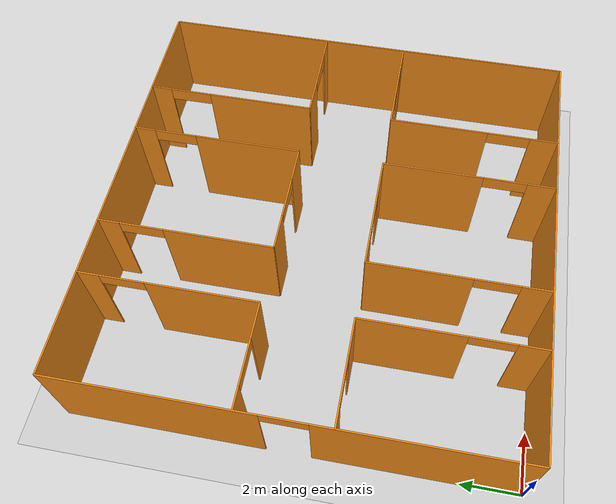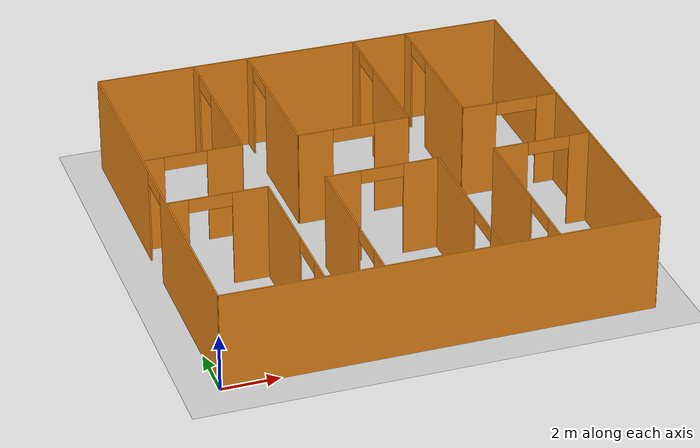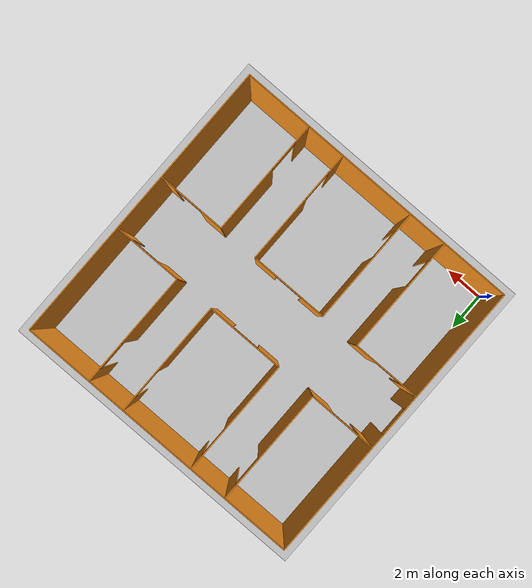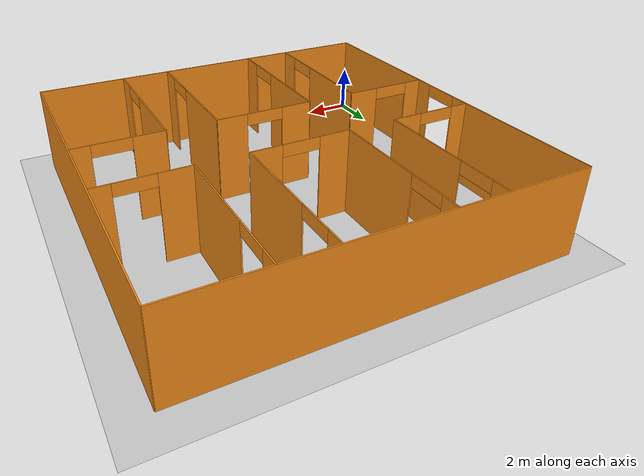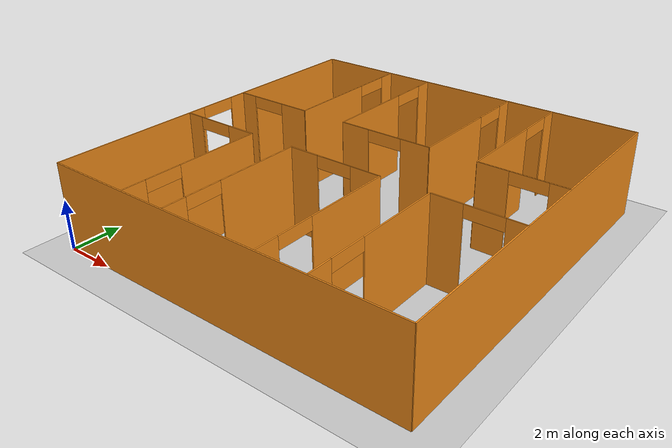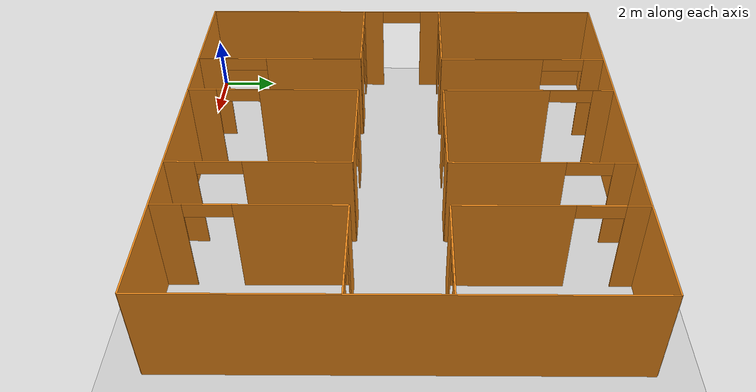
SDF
<sdf version="1.6">
  <world name="default">
    <model name="box_48">
  <pose frame="">7.5 9.0 3.25 0 0 -0.0</pose>
  <link name="link">
    <inertial>
      <mass>1</mass>
      <inertia>
        <ixx>0</ixx>
        <ixy>0</ixy>
        <ixz>0</ixz>
        <iyy>0</iyy>
        <iyz>0</iyz>
        <izz>0</izz>
      </inertia>
    </inertial>
    <collision name="collision">
      <geometry>
        <box>
          <size>1.5 0.05 0.5</size>
        </box>
      </geometry>
      <max_contacts>10</max_contacts>
      <surface>
        <contact>
          <ode/>
        </contact>
        <bounce/>
        <friction>
          <torsional>
            <ode/>
          </torsional>
          <ode/>
        </friction>
      </surface>
    </collision>
    <visual name="visual">
      <geometry>
        <box>
          <size>1.5 0.05 0.5</size>
        </box>
      </geometry>
      <material>
        <script>
          <name>Gazebo/Orange</name>
          <uri>file://media/materials/scripts/gazebo.material</uri>
        </script>
      </material>
    </visual>
    <self_collide>0</self_collide>
    <enable_wind>0</enable_wind>
    <kinematic>0</kinematic>
  </link>
	<static>1</static>
</model><model name="box_47">
  <pose frame="">1.5 9.0 3.25 0 0 -3.141592653589793</pose>
  <link name="link">
    <inertial>
      <mass>1</mass>
      <inertia>
        <ixx>0</ixx>
        <ixy>0</ixy>
        <ixz>0</ixz>
        <iyy>0</iyy>
        <iyz>0</iyz>
        <izz>0</izz>
      </inertia>
    </inertial>
    <collision name="collision">
      <geometry>
        <box>
          <size>1.5 0.05 0.5</size>
        </box>
      </geometry>
      <max_contacts>10</max_contacts>
      <surface>
        <contact>
          <ode/>
        </contact>
        <bounce/>
        <friction>
          <torsional>
            <ode/>
          </torsional>
          <ode/>
        </friction>
      </surface>
    </collision>
    <visual name="visual">
      <geometry>
        <box>
          <size>1.5 0.05 0.5</size>
        </box>
      </geometry>
      <material>
        <script>
          <name>Gazebo/Orange</name>
          <uri>file://media/materials/scripts/gazebo.material</uri>
        </script>
      </material>
    </visual>
    <self_collide>0</self_collide>
    <enable_wind>0</enable_wind>
    <kinematic>0</kinematic>
  </link>
	<static>1</static>
</model><model name="box_46">
  <pose frame="">1.5 6.0 3.25 0 0 -3.141592653589793</pose>
  <link name="link">
    <inertial>
      <mass>1</mass>
      <inertia>
        <ixx>0</ixx>
        <ixy>0</ixy>
        <ixz>0</ixz>
        <iyy>0</iyy>
        <iyz>0</iyz>
        <izz>0</izz>
      </inertia>
    </inertial>
    <collision name="collision">
      <geometry>
        <box>
          <size>1.5 0.05 0.5</size>
        </box>
      </geometry>
      <max_contacts>10</max_contacts>
      <surface>
        <contact>
          <ode/>
        </contact>
        <bounce/>
        <friction>
          <torsional>
            <ode/>
          </torsional>
          <ode/>
        </friction>
      </surface>
    </collision>
    <visual name="visual">
      <geometry>
        <box>
          <size>1.5 0.05 0.5</size>
        </box>
      </geometry>
      <material>
        <script>
          <name>Gazebo/Orange</name>
          <uri>file://media/materials/scripts/gazebo.material</uri>
        </script>
      </material>
    </visual>
    <self_collide>0</self_collide>
    <enable_wind>0</enable_wind>
    <kinematic>0</kinematic>
  </link>
	<static>1</static>
</model><model name="box_45">
  <pose frame="">7.5 6.0 3.25 0 0 -3.141592653589793</pose>
  <link name="link">
    <inertial>
      <mass>1</mass>
      <inertia>
        <ixx>0</ixx>
        <ixy>0</ixy>
        <ixz>0</ixz>
        <iyy>0</iyy>
        <iyz>0</iyz>
        <izz>0</izz>
      </inertia>
    </inertial>
    <collision name="collision">
      <geometry>
        <box>
          <size>1.5 0.05 0.5</size>
        </box>
      </geometry>
      <max_contacts>10</max_contacts>
      <surface>
        <contact>
          <ode/>
        </contact>
        <bounce/>
        <friction>
          <torsional>
            <ode/>
          </torsional>
          <ode/>
        </friction>
      </surface>
    </collision>
    <visual name="visual">
      <geometry>
        <box>
          <size>1.5 0.05 0.5</size>
        </box>
      </geometry>
      <material>
        <script>
          <name>Gazebo/Orange</name>
          <uri>file://media/materials/scripts/gazebo.material</uri>
        </script>
      </material>
    </visual>
    <self_collide>0</self_collide>
    <enable_wind>0</enable_wind>
    <kinematic>0</kinematic>
  </link>
	<static>1</static>
</model><model name="box_44">
  <pose frame="">13.5 6.0 3.25 0 0 -3.141592653589793</pose>
  <link name="link">
    <inertial>
      <mass>1</mass>
      <inertia>
        <ixx>0</ixx>
        <ixy>0</ixy>
        <ixz>0</ixz>
        <iyy>0</iyy>
        <iyz>0</iyz>
        <izz>0</izz>
      </inertia>
    </inertial>
    <collision name="collision">
      <geometry>
        <box>
          <size>1.5 0.05 0.5</size>
        </box>
      </geometry>
      <max_contacts>10</max_contacts>
      <surface>
        <contact>
          <ode/>
        </contact>
        <bounce/>
        <friction>
          <torsional>
            <ode/>
          </torsional>
          <ode/>
        </friction>
      </surface>
    </collision>
    <visual name="visual">
      <geometry>
        <box>
          <size>1.5 0.05 0.5</size>
        </box>
      </geometry>
      <material>
        <script>
          <name>Gazebo/Orange</name>
          <uri>file://media/materials/scripts/gazebo.material</uri>
        </script>
      </material>
    </visual>
    <self_collide>0</self_collide>
    <enable_wind>0</enable_wind>
    <kinematic>0</kinematic>
  </link>
	<static>1</static>
</model><model name="box_43">
  <pose frame="">13.5 9.0 3.25 0 0 -3.141592653589793</pose>
  <link name="link">
    <inertial>
      <mass>1</mass>
      <inertia>
        <ixx>0</ixx>
        <ixy>0</ixy>
        <ixz>0</ixz>
        <iyy>0</iyy>
        <iyz>0</iyz>
        <izz>0</izz>
      </inertia>
    </inertial>
    <collision name="collision">
      <geometry>
        <box>
          <size>1.5 0.05 0.5</size>
        </box>
      </geometry>
      <max_contacts>10</max_contacts>
      <surface>
        <contact>
          <ode/>
        </contact>
        <bounce/>
        <friction>
          <torsional>
            <ode/>
          </torsional>
          <ode/>
        </friction>
      </surface>
    </collision>
    <visual name="visual">
      <geometry>
        <box>
          <size>1.5 0.05 0.5</size>
        </box>
      </geometry>
      <material>
        <script>
          <name>Gazebo/Orange</name>
          <uri>file://media/materials/scripts/gazebo.material</uri>
        </script>
      </material>
    </visual>
    <self_collide>0</self_collide>
    <enable_wind>0</enable_wind>
    <kinematic>0</kinematic>
  </link>
	<static>1</static>
</model><model name="box_42">
  <pose frame="">0.0 7.5 3.25 0 0 1.5707963267948966</pose>
  <link name="link">
    <inertial>
      <mass>1</mass>
      <inertia>
        <ixx>0</ixx>
        <ixy>0</ixy>
        <ixz>0</ixz>
        <iyy>0</iyy>
        <iyz>0</iyz>
        <izz>0</izz>
      </inertia>
    </inertial>
    <collision name="collision">
      <geometry>
        <box>
          <size>1.5 0.05 0.5</size>
        </box>
      </geometry>
      <max_contacts>10</max_contacts>
      <surface>
        <contact>
          <ode/>
        </contact>
        <bounce/>
        <friction>
          <torsional>
            <ode/>
          </torsional>
          <ode/>
        </friction>
      </surface>
    </collision>
    <visual name="visual">
      <geometry>
        <box>
          <size>1.5 0.05 0.5</size>
        </box>
      </geometry>
      <material>
        <script>
          <name>Gazebo/Orange</name>
          <uri>file://media/materials/scripts/gazebo.material</uri>
        </script>
      </material>
    </visual>
    <self_collide>0</self_collide>
    <enable_wind>0</enable_wind>
    <kinematic>0</kinematic>
  </link>
	<static>1</static>
</model><model name="box_41">
  <pose frame="">5.5 13.5 3.25 0 0 1.5707963267948966</pose>
  <link name="link">
    <inertial>
      <mass>1</mass>
      <inertia>
        <ixx>0</ixx>
        <ixy>0</ixy>
        <ixz>0</ixz>
        <iyy>0</iyy>
        <iyz>0</iyz>
        <izz>0</izz>
      </inertia>
    </inertial>
    <collision name="collision">
      <geometry>
        <box>
          <size>1.5 0.05 0.5</size>
        </box>
      </geometry>
      <max_contacts>10</max_contacts>
      <surface>
        <contact>
          <ode/>
        </contact>
        <bounce/>
        <friction>
          <torsional>
            <ode/>
          </torsional>
          <ode/>
        </friction>
      </surface>
    </collision>
    <visual name="visual">
      <geometry>
        <box>
          <size>1.5 0.05 0.5</size>
        </box>
      </geometry>
      <material>
        <script>
          <name>Gazebo/Orange</name>
          <uri>file://media/materials/scripts/gazebo.material</uri>
        </script>
      </material>
    </visual>
    <self_collide>0</self_collide>
    <enable_wind>0</enable_wind>
    <kinematic>0</kinematic>
  </link>
	<static>1</static>
</model><model name="box_40">
  <pose frame="">3.5 13.5 3.25 0 0 1.5707963267948966</pose>
  <link name="link">
    <inertial>
      <mass>1</mass>
      <inertia>
        <ixx>0</ixx>
        <ixy>0</ixy>
        <ixz>0</ixz>
        <iyy>0</iyy>
        <iyz>0</iyz>
        <izz>0</izz>
      </inertia>
    </inertial>
    <collision name="collision">
      <geometry>
        <box>
          <size>1.5 0.05 0.5</size>
        </box>
      </geometry>
      <max_contacts>10</max_contacts>
      <surface>
        <contact>
          <ode/>
        </contact>
        <bounce/>
        <friction>
          <torsional>
            <ode/>
          </torsional>
          <ode/>
        </friction>
      </surface>
    </collision>
    <visual name="visual">
      <geometry>
        <box>
          <size>1.5 0.05 0.5</size>
        </box>
      </geometry>
      <material>
        <script>
          <name>Gazebo/Orange</name>
          <uri>file://media/materials/scripts/gazebo.material</uri>
        </script>
      </material>
    </visual>
    <self_collide>0</self_collide>
    <enable_wind>0</enable_wind>
    <kinematic>0</kinematic>
  </link>
	<static>1</static>
</model><model name="box_39">
  <pose frame="">9.5 13.5 3.25 0 0 1.5707963267948966</pose>
  <link name="link">
    <inertial>
      <mass>1</mass>
      <inertia>
        <ixx>0</ixx>
        <ixy>0</ixy>
        <ixz>0</ixz>
        <iyy>0</iyy>
        <iyz>0</iyz>
        <izz>0</izz>
      </inertia>
    </inertial>
    <collision name="collision">
      <geometry>
        <box>
          <size>1.5 0.05 0.5</size>
        </box>
      </geometry>
      <max_contacts>10</max_contacts>
      <surface>
        <contact>
          <ode/>
        </contact>
        <bounce/>
        <friction>
          <torsional>
            <ode/>
          </torsional>
          <ode/>
        </friction>
      </surface>
    </collision>
    <visual name="visual">
      <geometry>
        <box>
          <size>1.5 0.05 0.5</size>
        </box>
      </geometry>
      <material>
        <script>
          <name>Gazebo/Orange</name>
          <uri>file://media/materials/scripts/gazebo.material</uri>
        </script>
      </material>
    </visual>
    <self_collide>0</self_collide>
    <enable_wind>0</enable_wind>
    <kinematic>0</kinematic>
  </link>
	<static>1</static>
</model><model name="box_38">
  <pose frame="">11.5 13.5 3.25 0 0 1.5707963267948966</pose>
  <link name="link">
    <inertial>
      <mass>1</mass>
      <inertia>
        <ixx>0</ixx>
        <ixy>0</ixy>
        <ixz>0</ixz>
        <iyy>0</iyy>
        <iyz>0</iyz>
        <izz>0</izz>
      </inertia>
    </inertial>
    <collision name="collision">
      <geometry>
        <box>
          <size>1.5 0.05 0.5</size>
        </box>
      </geometry>
      <max_contacts>10</max_contacts>
      <surface>
        <contact>
          <ode/>
        </contact>
        <bounce/>
        <friction>
          <torsional>
            <ode/>
          </torsional>
          <ode/>
        </friction>
      </surface>
    </collision>
    <visual name="visual">
      <geometry>
        <box>
          <size>1.5 0.05 0.5</size>
        </box>
      </geometry>
      <material>
        <script>
          <name>Gazebo/Orange</name>
          <uri>file://media/materials/scripts/gazebo.material</uri>
        </script>
      </material>
    </visual>
    <self_collide>0</self_collide>
    <enable_wind>0</enable_wind>
    <kinematic>0</kinematic>
  </link>
	<static>1</static>
</model><model name="box_37">
  <pose frame="">11.5 1.75 3.25 0 0 -1.5707963267948966</pose>
  <link name="link">
    <inertial>
      <mass>1</mass>
      <inertia>
        <ixx>0</ixx>
        <ixy>0</ixy>
        <ixz>0</ixz>
        <iyy>0</iyy>
        <iyz>0</iyz>
        <izz>0</izz>
      </inertia>
    </inertial>
    <collision name="collision">
      <geometry>
        <box>
          <size>1.5 0.05 0.5</size>
        </box>
      </geometry>
      <max_contacts>10</max_contacts>
      <surface>
        <contact>
          <ode/>
        </contact>
        <bounce/>
        <friction>
          <torsional>
            <ode/>
          </torsional>
          <ode/>
        </friction>
      </surface>
    </collision>
    <visual name="visual">
      <geometry>
        <box>
          <size>1.5 0.05 0.5</size>
        </box>
      </geometry>
      <material>
        <script>
          <name>Gazebo/Orange</name>
          <uri>file://media/materials/scripts/gazebo.material</uri>
        </script>
      </material>
    </visual>
    <self_collide>0</self_collide>
    <enable_wind>0</enable_wind>
    <kinematic>0</kinematic>
  </link>
	<static>1</static>
</model><model name="box_36">
  <pose frame="">9.5 1.75 3.25 0 0 -1.5707963267948966</pose>
  <link name="link">
    <inertial>
      <mass>1</mass>
      <inertia>
        <ixx>0</ixx>
        <ixy>0</ixy>
        <ixz>0</ixz>
        <iyy>0</iyy>
        <iyz>0</iyz>
        <izz>0</izz>
      </inertia>
    </inertial>
    <collision name="collision">
      <geometry>
        <box>
          <size>1.5 0.05 0.5</size>
        </box>
      </geometry>
      <max_contacts>10</max_contacts>
      <surface>
        <contact>
          <ode/>
        </contact>
        <bounce/>
        <friction>
          <torsional>
            <ode/>
          </torsional>
          <ode/>
        </friction>
      </surface>
    </collision>
    <visual name="visual">
      <geometry>
        <box>
          <size>1.5 0.05 0.5</size>
        </box>
      </geometry>
      <material>
        <script>
          <name>Gazebo/Orange</name>
          <uri>file://media/materials/scripts/gazebo.material</uri>
        </script>
      </material>
    </visual>
    <self_collide>0</self_collide>
    <enable_wind>0</enable_wind>
    <kinematic>0</kinematic>
  </link>
	<static>1</static>
</model><model name="box_35">
  <pose frame="">5.5 1.75 3.25 0 0 -1.5707963267948966</pose>
  <link name="link">
    <inertial>
      <mass>1</mass>
      <inertia>
        <ixx>0</ixx>
        <ixy>0</ixy>
        <ixz>0</ixz>
        <iyy>0</iyy>
        <iyz>0</iyz>
        <izz>0</izz>
      </inertia>
    </inertial>
    <collision name="collision">
      <geometry>
        <box>
          <size>1.5 0.05 0.5</size>
        </box>
      </geometry>
      <max_contacts>10</max_contacts>
      <surface>
        <contact>
          <ode/>
        </contact>
        <bounce/>
        <friction>
          <torsional>
            <ode/>
          </torsional>
          <ode/>
        </friction>
      </surface>
    </collision>
    <visual name="visual">
      <geometry>
        <box>
          <size>1.5 0.05 0.5</size>
        </box>
      </geometry>
      <material>
        <script>
          <name>Gazebo/Orange</name>
          <uri>file://media/materials/scripts/gazebo.material</uri>
        </script>
      </material>
    </visual>
    <self_collide>0</self_collide>
    <enable_wind>0</enable_wind>
    <kinematic>0</kinematic>
  </link>
	<static>1</static>
</model><model name="box_34">
  <pose frame="">3.5 1.75 3.25 0 0 -1.5707963267948966</pose>
  <link name="link">
    <inertial>
      <mass>1</mass>
      <inertia>
        <ixx>0</ixx>
        <ixy>0</ixy>
        <ixz>0</ixz>
        <iyy>0</iyy>
        <iyz>0</iyz>
        <izz>0</izz>
      </inertia>
    </inertial>
    <collision name="collision">
      <geometry>
        <box>
          <size>1.5 0.05 0.5</size>
        </box>
      </geometry>
      <max_contacts>10</max_contacts>
      <surface>
        <contact>
          <ode/>
        </contact>
        <bounce/>
        <friction>
          <torsional>
            <ode/>
          </torsional>
          <ode/>
        </friction>
      </surface>
    </collision>
    <visual name="visual">
      <geometry>
        <box>
          <size>1.5 0.05 0.5</size>
        </box>
      </geometry>
      <material>
        <script>
          <name>Gazebo/Orange</name>
          <uri>file://media/materials/scripts/gazebo.material</uri>
        </script>
      </material>
    </visual>
    <self_collide>0</self_collide>
    <enable_wind>0</enable_wind>
    <kinematic>0</kinematic>
  </link>
	<static>1</static>
</model><model name="box_33">
  <pose frame="">9.5 10.875 1.75 0 0 -1.5707963267948966</pose>
  <link name="link">
    <inertial>
      <mass>1</mass>
      <inertia>
        <ixx>0</ixx>
        <ixy>0</ixy>
        <ixz>0</ixz>
        <iyy>0</iyy>
        <iyz>0</iyz>
        <izz>0</izz>
      </inertia>
    </inertial>
    <collision name="collision">
      <geometry>
        <box>
          <size>3.75 0.05 3.5</size>
        </box>
      </geometry>
      <max_contacts>10</max_contacts>
      <surface>
        <contact>
          <ode/>
        </contact>
        <bounce/>
        <friction>
          <torsional>
            <ode/>
          </torsional>
          <ode/>
        </friction>
      </surface>
    </collision>
    <visual name="visual">
      <geometry>
        <box>
          <size>3.75 0.05 3.5</size>
        </box>
      </geometry>
      <material>
        <script>
          <name>Gazebo/Orange</name>
          <uri>file://media/materials/scripts/gazebo.material</uri>
        </script>
      </material>
    </visual>
    <self_collide>0</self_collide>
    <enable_wind>0</enable_wind>
    <kinematic>0</kinematic>
  </link>
	<static>1</static>
</model><model name="box_32">
  <pose frame="">8.875 9.0 1.75 0 0 -3.141592653589793</pose>
  <link name="link">
    <inertial>
      <mass>1</mass>
      <inertia>
        <ixx>0</ixx>
        <ixy>0</ixy>
        <ixz>0</ixz>
        <iyy>0</iyy>
        <iyz>0</iyz>
        <izz>0</izz>
      </inertia>
    </inertial>
    <collision name="collision">
      <geometry>
        <box>
          <size>1.25 0.05 3.5</size>
        </box>
      </geometry>
      <max_contacts>10</max_contacts>
      <surface>
        <contact>
          <ode/>
        </contact>
        <bounce/>
        <friction>
          <torsional>
            <ode/>
          </torsional>
          <ode/>
        </friction>
      </surface>
    </collision>
    <visual name="visual">
      <geometry>
        <box>
          <size>1.25 0.05 3.5</size>
        </box>
      </geometry>
      <material>
        <script>
          <name>Gazebo/Orange</name>
          <uri>file://media/materials/scripts/gazebo.material</uri>
        </script>
      </material>
    </visual>
    <self_collide>0</self_collide>
    <enable_wind>0</enable_wind>
    <kinematic>0</kinematic>
  </link>
	<static>1</static>
</model><model name="box_31">
  <pose frame="">14.625 6.0 1.75 0 0 -3.141592653589793</pose>
  <link name="link">
    <inertial>
      <mass>1</mass>
      <inertia>
        <ixx>0</ixx>
        <ixy>0</ixy>
        <ixz>0</ixz>
        <iyy>0</iyy>
        <iyz>0</iyz>
        <izz>0</izz>
      </inertia>
    </inertial>
    <collision name="collision">
      <geometry>
        <box>
          <size>0.75 0.05 3.5</size>
        </box>
      </geometry>
      <max_contacts>10</max_contacts>
      <surface>
        <contact>
          <ode/>
        </contact>
        <bounce/>
        <friction>
          <torsional>
            <ode/>
          </torsional>
          <ode/>
        </friction>
      </surface>
    </collision>
    <visual name="visual">
      <geometry>
        <box>
          <size>0.75 0.05 3.5</size>
        </box>
      </geometry>
      <material>
        <script>
          <name>Gazebo/Orange</name>
          <uri>file://media/materials/scripts/gazebo.material</uri>
        </script>
      </material>
    </visual>
    <self_collide>0</self_collide>
    <enable_wind>0</enable_wind>
    <kinematic>0</kinematic>
  </link>
	<static>1</static>
</model><model name="box_30">
  <pose frame="">12.125 6.0 1.75 0 0 -3.141592653589793</pose>
  <link name="link">
    <inertial>
      <mass>1</mass>
      <inertia>
        <ixx>0</ixx>
        <ixy>0</ixy>
        <ixz>0</ixz>
        <iyy>0</iyy>
        <iyz>0</iyz>
        <izz>0</izz>
      </inertia>
    </inertial>
    <collision name="collision">
      <geometry>
        <box>
          <size>1.25 0.05 3.5</size>
        </box>
      </geometry>
      <max_contacts>10</max_contacts>
      <surface>
        <contact>
          <ode/>
        </contact>
        <bounce/>
        <friction>
          <torsional>
            <ode/>
          </torsional>
          <ode/>
        </friction>
      </surface>
    </collision>
    <visual name="visual">
      <geometry>
        <box>
          <size>1.25 0.05 3.5</size>
        </box>
      </geometry>
      <material>
        <script>
          <name>Gazebo/Orange</name>
          <uri>file://media/materials/scripts/gazebo.material</uri>
        </script>
      </material>
    </visual>
    <self_collide>0</self_collide>
    <enable_wind>0</enable_wind>
    <kinematic>0</kinematic>
  </link>
	<static>1</static>
</model><model name="box_29">
  <pose frame="">11.5 4.25 1.75 0 0 -1.5707963267948966</pose>
  <link name="link">
    <inertial>
      <mass>1</mass>
      <inertia>
        <ixx>0</ixx>
        <ixy>0</ixy>
        <ixz>0</ixz>
        <iyy>0</iyy>
        <iyz>0</iyz>
        <izz>0</izz>
      </inertia>
    </inertial>
    <collision name="collision">
      <geometry>
        <box>
          <size>3.5 0.05 3.5</size>
        </box>
      </geometry>
      <max_contacts>10</max_contacts>
      <surface>
        <contact>
          <ode/>
        </contact>
        <bounce/>
        <friction>
          <torsional>
            <ode/>
          </torsional>
          <ode/>
        </friction>
      </surface>
    </collision>
    <visual name="visual">
      <geometry>
        <box>
          <size>3.5 0.05 3.5</size>
        </box>
      </geometry>
      <material>
        <script>
          <name>Gazebo/Orange</name>
          <uri>file://media/materials/scripts/gazebo.material</uri>
        </script>
      </material>
    </visual>
    <self_collide>0</self_collide>
    <enable_wind>0</enable_wind>
    <kinematic>0</kinematic>
  </link>
	<static>1</static>
</model><model name="box_28">
  <pose frame="">9.5 4.25 1.75 0 0 1.5707963267948966</pose>
  <link name="link">
    <inertial>
      <mass>1</mass>
      <inertia>
        <ixx>0</ixx>
        <ixy>0</ixy>
        <ixz>0</ixz>
        <iyy>0</iyy>
        <iyz>0</iyz>
        <izz>0</izz>
      </inertia>
    </inertial>
    <collision name="collision">
      <geometry>
        <box>
          <size>3.5 0.05 3.5</size>
        </box>
      </geometry>
      <max_contacts>10</max_contacts>
      <surface>
        <contact>
          <ode/>
        </contact>
        <bounce/>
        <friction>
          <torsional>
            <ode/>
          </torsional>
          <ode/>
        </friction>
      </surface>
    </collision>
    <visual name="visual">
      <geometry>
        <box>
          <size>3.5 0.05 3.5</size>
        </box>
      </geometry>
      <material>
        <script>
          <name>Gazebo/Orange</name>
          <uri>file://media/materials/scripts/gazebo.material</uri>
        </script>
      </material>
    </visual>
    <self_collide>0</self_collide>
    <enable_wind>0</enable_wind>
    <kinematic>0</kinematic>
  </link>
	<static>1</static>
</model><model name="box_27">
  <pose frame="">8.875 6.0 1.75 0 0 -3.141592653589793</pose>
  <link name="link">
    <inertial>
      <mass>1</mass>
      <inertia>
        <ixx>0</ixx>
        <ixy>0</ixy>
        <ixz>0</ixz>
        <iyy>0</iyy>
        <iyz>0</iyz>
        <izz>0</izz>
      </inertia>
    </inertial>
    <collision name="collision">
      <geometry>
        <box>
          <size>1.25 0.05 3.5</size>
        </box>
      </geometry>
      <max_contacts>10</max_contacts>
      <surface>
        <contact>
          <ode/>
        </contact>
        <bounce/>
        <friction>
          <torsional>
            <ode/>
          </torsional>
          <ode/>
        </friction>
      </surface>
    </collision>
    <visual name="visual">
      <geometry>
        <box>
          <size>1.25 0.05 3.5</size>
        </box>
      </geometry>
      <material>
        <script>
          <name>Gazebo/Orange</name>
          <uri>file://media/materials/scripts/gazebo.material</uri>
        </script>
      </material>
    </visual>
    <self_collide>0</self_collide>
    <enable_wind>0</enable_wind>
    <kinematic>0</kinematic>
  </link>
	<static>1</static>
</model><model name="box_26">
  <pose frame="">6.125 6.0 1.75 0 0 -3.141592653589793</pose>
  <link name="link">
    <inertial>
      <mass>1</mass>
      <inertia>
        <ixx>0</ixx>
        <ixy>0</ixy>
        <ixz>0</ixz>
        <iyy>0</iyy>
        <iyz>0</iyz>
        <izz>0</izz>
      </inertia>
    </inertial>
    <collision name="collision">
      <geometry>
        <box>
          <size>1.25 0.05 3.5</size>
        </box>
      </geometry>
      <max_contacts>10</max_contacts>
      <surface>
        <contact>
          <ode/>
        </contact>
        <bounce/>
        <friction>
          <torsional>
            <ode/>
          </torsional>
          <ode/>
        </friction>
      </surface>
    </collision>
    <visual name="visual">
      <geometry>
        <box>
          <size>1.25 0.05 3.5</size>
        </box>
      </geometry>
      <material>
        <script>
          <name>Gazebo/Orange</name>
          <uri>file://media/materials/scripts/gazebo.material</uri>
        </script>
      </material>
    </visual>
    <self_collide>0</self_collide>
    <enable_wind>0</enable_wind>
    <kinematic>0</kinematic>
  </link>
	<static>1</static>
</model><model name="box_25">
  <pose frame="">5.5 4.25 1.75 0 0 -1.5707963267948966</pose>
  <link name="link">
    <inertial>
      <mass>1</mass>
      <inertia>
        <ixx>0</ixx>
        <ixy>0</ixy>
        <ixz>0</ixz>
        <iyy>0</iyy>
        <iyz>0</iyz>
        <izz>0</izz>
      </inertia>
    </inertial>
    <collision name="collision">
      <geometry>
        <box>
          <size>3.5 0.05 3.5</size>
        </box>
      </geometry>
      <max_contacts>10</max_contacts>
      <surface>
        <contact>
          <ode/>
        </contact>
        <bounce/>
        <friction>
          <torsional>
            <ode/>
          </torsional>
          <ode/>
        </friction>
      </surface>
    </collision>
    <visual name="visual">
      <geometry>
        <box>
          <size>3.5 0.05 3.5</size>
        </box>
      </geometry>
      <material>
        <script>
          <name>Gazebo/Orange</name>
          <uri>file://media/materials/scripts/gazebo.material</uri>
        </script>
      </material>
    </visual>
    <self_collide>0</self_collide>
    <enable_wind>0</enable_wind>
    <kinematic>0</kinematic>
  </link>
	<static>1</static>
</model><model name="box_24">
  <pose frame="">3.5 4.25 1.75 0 0 1.5707963267948966</pose>
  <link name="link">
    <inertial>
      <mass>1</mass>
      <inertia>
        <ixx>0</ixx>
        <ixy>0</ixy>
        <ixz>0</ixz>
        <iyy>0</iyy>
        <iyz>0</iyz>
        <izz>0</izz>
      </inertia>
    </inertial>
    <collision name="collision">
      <geometry>
        <box>
          <size>3.5 0.05 3.5</size>
        </box>
      </geometry>
      <max_contacts>10</max_contacts>
      <surface>
        <contact>
          <ode/>
        </contact>
        <bounce/>
        <friction>
          <torsional>
            <ode/>
          </torsional>
          <ode/>
        </friction>
      </surface>
    </collision>
    <visual name="visual">
      <geometry>
        <box>
          <size>3.5 0.05 3.5</size>
        </box>
      </geometry>
      <material>
        <script>
          <name>Gazebo/Orange</name>
          <uri>file://media/materials/scripts/gazebo.material</uri>
        </script>
      </material>
    </visual>
    <self_collide>0</self_collide>
    <enable_wind>0</enable_wind>
    <kinematic>0</kinematic>
  </link>
	<static>1</static>
</model><model name="box_23">
  <pose frame="">2.875 6.0 1.75 0 0 -3.141592653589793</pose>
  <link name="link">
    <inertial>
      <mass>1</mass>
      <inertia>
        <ixx>0</ixx>
        <ixy>0</ixy>
        <ixz>0</ixz>
        <iyy>0</iyy>
        <iyz>0</iyz>
        <izz>0</izz>
      </inertia>
    </inertial>
    <collision name="collision">
      <geometry>
        <box>
          <size>1.25 0.05 3.5</size>
        </box>
      </geometry>
      <max_contacts>10</max_contacts>
      <surface>
        <contact>
          <ode/>
        </contact>
        <bounce/>
        <friction>
          <torsional>
            <ode/>
          </torsional>
          <ode/>
        </friction>
      </surface>
    </collision>
    <visual name="visual">
      <geometry>
        <box>
          <size>1.25 0.05 3.5</size>
        </box>
      </geometry>
      <material>
        <script>
          <name>Gazebo/Orange</name>
          <uri>file://media/materials/scripts/gazebo.material</uri>
        </script>
      </material>
    </visual>
    <self_collide>0</self_collide>
    <enable_wind>0</enable_wind>
    <kinematic>0</kinematic>
  </link>
	<static>1</static>
</model><model name="box_22">
  <pose frame="">0.375 6.0 1.75 0 0 -3.141592653589793</pose>
  <link name="link">
    <inertial>
      <mass>1</mass>
      <inertia>
        <ixx>0</ixx>
        <ixy>0</ixy>
        <ixz>0</ixz>
        <iyy>0</iyy>
        <iyz>0</iyz>
        <izz>0</izz>
      </inertia>
    </inertial>
    <collision name="collision">
      <geometry>
        <box>
          <size>0.75 0.05 3.5</size>
        </box>
      </geometry>
      <max_contacts>10</max_contacts>
      <surface>
        <contact>
          <ode/>
        </contact>
        <bounce/>
        <friction>
          <torsional>
            <ode/>
          </torsional>
          <ode/>
        </friction>
      </surface>
    </collision>
    <visual name="visual">
      <geometry>
        <box>
          <size>0.75 0.05 3.5</size>
        </box>
      </geometry>
      <material>
        <script>
          <name>Gazebo/Orange</name>
          <uri>file://media/materials/scripts/gazebo.material</uri>
        </script>
      </material>
    </visual>
    <self_collide>0</self_collide>
    <enable_wind>0</enable_wind>
    <kinematic>0</kinematic>
  </link>
	<static>1</static>
</model><model name="box_21">
  <pose frame="">14.625 9.0 1.75 0 0 -3.141592653589793</pose>
  <link name="link">
    <inertial>
      <mass>1</mass>
      <inertia>
        <ixx>0</ixx>
        <ixy>0</ixy>
        <ixz>0</ixz>
        <iyy>0</iyy>
        <iyz>0</iyz>
        <izz>0</izz>
      </inertia>
    </inertial>
    <collision name="collision">
      <geometry>
        <box>
          <size>0.75 0.05 3.5</size>
        </box>
      </geometry>
      <max_contacts>10</max_contacts>
      <surface>
        <contact>
          <ode/>
        </contact>
        <bounce/>
        <friction>
          <torsional>
            <ode/>
          </torsional>
          <ode/>
        </friction>
      </surface>
    </collision>
    <visual name="visual">
      <geometry>
        <box>
          <size>0.75 0.05 3.5</size>
        </box>
      </geometry>
      <material>
        <script>
          <name>Gazebo/Orange</name>
          <uri>file://media/materials/scripts/gazebo.material</uri>
        </script>
      </material>
    </visual>
    <self_collide>0</self_collide>
    <enable_wind>0</enable_wind>
    <kinematic>0</kinematic>
  </link>
	<static>1</static>
</model><model name="box_20">
  <pose frame="">12.125 9.0 1.75 0 0 -3.141592653589793</pose>
  <link name="link">
    <inertial>
      <mass>1</mass>
      <inertia>
        <ixx>0</ixx>
        <ixy>0</ixy>
        <ixz>0</ixz>
        <iyy>0</iyy>
        <iyz>0</iyz>
        <izz>0</izz>
      </inertia>
    </inertial>
    <collision name="collision">
      <geometry>
        <box>
          <size>1.25 0.05 3.5</size>
        </box>
      </geometry>
      <max_contacts>10</max_contacts>
      <surface>
        <contact>
          <ode/>
        </contact>
        <bounce/>
        <friction>
          <torsional>
            <ode/>
          </torsional>
          <ode/>
        </friction>
      </surface>
    </collision>
    <visual name="visual">
      <geometry>
        <box>
          <size>1.25 0.05 3.5</size>
        </box>
      </geometry>
      <material>
        <script>
          <name>Gazebo/Orange</name>
          <uri>file://media/materials/scripts/gazebo.material</uri>
        </script>
      </material>
    </visual>
    <self_collide>0</self_collide>
    <enable_wind>0</enable_wind>
    <kinematic>0</kinematic>
  </link>
	<static>1</static>
</model><model name="box_19">
  <pose frame="">11.5 10.875 1.75 0 0 1.5707963267948966</pose>
  <link name="link">
    <inertial>
      <mass>1</mass>
      <inertia>
        <ixx>0</ixx>
        <ixy>0</ixy>
        <ixz>0</ixz>
        <iyy>0</iyy>
        <iyz>0</iyz>
        <izz>0</izz>
      </inertia>
    </inertial>
    <collision name="collision">
      <geometry>
        <box>
          <size>3.75 0.05 3.5</size>
        </box>
      </geometry>
      <max_contacts>10</max_contacts>
      <surface>
        <contact>
          <ode/>
        </contact>
        <bounce/>
        <friction>
          <torsional>
            <ode/>
          </torsional>
          <ode/>
        </friction>
      </surface>
    </collision>
    <visual name="visual">
      <geometry>
        <box>
          <size>3.75 0.05 3.5</size>
        </box>
      </geometry>
      <material>
        <script>
          <name>Gazebo/Orange</name>
          <uri>file://media/materials/scripts/gazebo.material</uri>
        </script>
      </material>
    </visual>
    <self_collide>0</self_collide>
    <enable_wind>0</enable_wind>
    <kinematic>0</kinematic>
  </link>
	<static>1</static>
</model><model name="box_18">
  <pose frame="">6.125 9.0 1.75 0 0 -3.141592653589793</pose>
  <link name="link">
    <inertial>
      <mass>1</mass>
      <inertia>
        <ixx>0</ixx>
        <ixy>0</ixy>
        <ixz>0</ixz>
        <iyy>0</iyy>
        <iyz>0</iyz>
        <izz>0</izz>
      </inertia>
    </inertial>
    <collision name="collision">
      <geometry>
        <box>
          <size>1.25 0.05 3.5</size>
        </box>
      </geometry>
      <max_contacts>10</max_contacts>
      <surface>
        <contact>
          <ode/>
        </contact>
        <bounce/>
        <friction>
          <torsional>
            <ode/>
          </torsional>
          <ode/>
        </friction>
      </surface>
    </collision>
    <visual name="visual">
      <geometry>
        <box>
          <size>1.25 0.05 3.5</size>
        </box>
      </geometry>
      <material>
        <script>
          <name>Gazebo/Orange</name>
          <uri>file://media/materials/scripts/gazebo.material</uri>
        </script>
      </material>
    </visual>
    <self_collide>0</self_collide>
    <enable_wind>0</enable_wind>
    <kinematic>0</kinematic>
  </link>
	<static>1</static>
</model><model name="box_17">
  <pose frame="">5.5 10.875 1.75 0 0 1.5707963267948966</pose>
  <link name="link">
    <inertial>
      <mass>1</mass>
      <inertia>
        <ixx>0</ixx>
        <ixy>0</ixy>
        <ixz>0</ixz>
        <iyy>0</iyy>
        <iyz>0</iyz>
        <izz>0</izz>
      </inertia>
    </inertial>
    <collision name="collision">
      <geometry>
        <box>
          <size>3.75 0.05 3.5</size>
        </box>
      </geometry>
      <max_contacts>10</max_contacts>
      <surface>
        <contact>
          <ode/>
        </contact>
        <bounce/>
        <friction>
          <torsional>
            <ode/>
          </torsional>
          <ode/>
        </friction>
      </surface>
    </collision>
    <visual name="visual">
      <geometry>
        <box>
          <size>3.75 0.05 3.5</size>
        </box>
      </geometry>
      <material>
        <script>
          <name>Gazebo/Orange</name>
          <uri>file://media/materials/scripts/gazebo.material</uri>
        </script>
      </material>
    </visual>
    <self_collide>0</self_collide>
    <enable_wind>0</enable_wind>
    <kinematic>0</kinematic>
  </link>
	<static>1</static>
</model><model name="box_16">
  <pose frame="">3.5 10.875 1.75 0 0 -1.5707963267948966</pose>
  <link name="link">
    <inertial>
      <mass>1</mass>
      <inertia>
        <ixx>0</ixx>
        <ixy>0</ixy>
        <ixz>0</ixz>
        <iyy>0</iyy>
        <iyz>0</iyz>
        <izz>0</izz>
      </inertia>
    </inertial>
    <collision name="collision">
      <geometry>
        <box>
          <size>3.75 0.05 3.5</size>
        </box>
      </geometry>
      <max_contacts>10</max_contacts>
      <surface>
        <contact>
          <ode/>
        </contact>
        <bounce/>
        <friction>
          <torsional>
            <ode/>
          </torsional>
          <ode/>
        </friction>
      </surface>
    </collision>
    <visual name="visual">
      <geometry>
        <box>
          <size>3.75 0.05 3.5</size>
        </box>
      </geometry>
      <material>
        <script>
          <name>Gazebo/Orange</name>
          <uri>file://media/materials/scripts/gazebo.material</uri>
        </script>
      </material>
    </visual>
    <self_collide>0</self_collide>
    <enable_wind>0</enable_wind>
    <kinematic>0</kinematic>
  </link>
	<static>1</static>
</model><model name="box_15">
  <pose frame="">2.875 9.0 1.75 0 0 -3.141592653589793</pose>
  <link name="link">
    <inertial>
      <mass>1</mass>
      <inertia>
        <ixx>0</ixx>
        <ixy>0</ixy>
        <ixz>0</ixz>
        <iyy>0</iyy>
        <iyz>0</iyz>
        <izz>0</izz>
      </inertia>
    </inertial>
    <collision name="collision">
      <geometry>
        <box>
          <size>1.25 0.05 3.5</size>
        </box>
      </geometry>
      <max_contacts>10</max_contacts>
      <surface>
        <contact>
          <ode/>
        </contact>
        <bounce/>
        <friction>
          <torsional>
            <ode/>
          </torsional>
          <ode/>
        </friction>
      </surface>
    </collision>
    <visual name="visual">
      <geometry>
        <box>
          <size>1.25 0.05 3.5</size>
        </box>
      </geometry>
      <material>
        <script>
          <name>Gazebo/Orange</name>
          <uri>file://media/materials/scripts/gazebo.material</uri>
        </script>
      </material>
    </visual>
    <self_collide>0</self_collide>
    <enable_wind>0</enable_wind>
    <kinematic>0</kinematic>
  </link>
	<static>1</static>
</model><model name="box_14">
  <pose frame="">0.375 9.0 1.75 0 0 -0.0</pose>
  <link name="link">
    <inertial>
      <mass>1</mass>
      <inertia>
        <ixx>0</ixx>
        <ixy>0</ixy>
        <ixz>0</ixz>
        <iyy>0</iyy>
        <iyz>0</iyz>
        <izz>0</izz>
      </inertia>
    </inertial>
    <collision name="collision">
      <geometry>
        <box>
          <size>0.75 0.05 3.5</size>
        </box>
      </geometry>
      <max_contacts>10</max_contacts>
      <surface>
        <contact>
          <ode/>
        </contact>
        <bounce/>
        <friction>
          <torsional>
            <ode/>
          </torsional>
          <ode/>
        </friction>
      </surface>
    </collision>
    <visual name="visual">
      <geometry>
        <box>
          <size>0.75 0.05 3.5</size>
        </box>
      </geometry>
      <material>
        <script>
          <name>Gazebo/Orange</name>
          <uri>file://media/materials/scripts/gazebo.material</uri>
        </script>
      </material>
    </visual>
    <self_collide>0</self_collide>
    <enable_wind>0</enable_wind>
    <kinematic>0</kinematic>
  </link>
	<static>1</static>
</model><model name="box_13">
  <pose frame="">3.5 0.5 1.75 0 0 -1.5707963267948966</pose>
  <link name="link">
    <inertial>
      <mass>1</mass>
      <inertia>
        <ixx>0</ixx>
        <ixy>0</ixy>
        <ixz>0</ixz>
        <iyy>0</iyy>
        <iyz>0</iyz>
        <izz>0</izz>
      </inertia>
    </inertial>
    <collision name="collision">
      <geometry>
        <box>
          <size>1.0 0.05 3.5</size>
        </box>
      </geometry>
      <max_contacts>10</max_contacts>
      <surface>
        <contact>
          <ode/>
        </contact>
        <bounce/>
        <friction>
          <torsional>
            <ode/>
          </torsional>
          <ode/>
        </friction>
      </surface>
    </collision>
    <visual name="visual">
      <geometry>
        <box>
          <size>1.0 0.05 3.5</size>
        </box>
      </geometry>
      <material>
        <script>
          <name>Gazebo/Orange</name>
          <uri>file://media/materials/scripts/gazebo.material</uri>
        </script>
      </material>
    </visual>
    <self_collide>0</self_collide>
    <enable_wind>0</enable_wind>
    <kinematic>0</kinematic>
  </link>
	<static>1</static>
</model><model name="box_12">
  <pose frame="">5.5 0.5 1.75 0 0 1.5707963267948966</pose>
  <link name="link">
    <inertial>
      <mass>1</mass>
      <inertia>
        <ixx>0</ixx>
        <ixy>0</ixy>
        <ixz>0</ixz>
        <iyy>0</iyy>
        <iyz>0</iyz>
        <izz>0</izz>
      </inertia>
    </inertial>
    <collision name="collision">
      <geometry>
        <box>
          <size>1.0 0.05 3.5</size>
        </box>
      </geometry>
      <max_contacts>10</max_contacts>
      <surface>
        <contact>
          <ode/>
        </contact>
        <bounce/>
        <friction>
          <torsional>
            <ode/>
          </torsional>
          <ode/>
        </friction>
      </surface>
    </collision>
    <visual name="visual">
      <geometry>
        <box>
          <size>1.0 0.05 3.5</size>
        </box>
      </geometry>
      <material>
        <script>
          <name>Gazebo/Orange</name>
          <uri>file://media/materials/scripts/gazebo.material</uri>
        </script>
      </material>
    </visual>
    <self_collide>0</self_collide>
    <enable_wind>0</enable_wind>
    <kinematic>0</kinematic>
  </link>
	<static>1</static>
</model><model name="box_11">
  <pose frame="">9.5 0.5 1.75 0 0 -1.5707963267948966</pose>
  <link name="link">
    <inertial>
      <mass>1</mass>
      <inertia>
        <ixx>0</ixx>
        <ixy>0</ixy>
        <ixz>0</ixz>
        <iyy>0</iyy>
        <iyz>0</iyz>
        <izz>0</izz>
      </inertia>
    </inertial>
    <collision name="collision">
      <geometry>
        <box>
          <size>1.0 0.05 3.5</size>
        </box>
      </geometry>
      <max_contacts>10</max_contacts>
      <surface>
        <contact>
          <ode/>
        </contact>
        <bounce/>
        <friction>
          <torsional>
            <ode/>
          </torsional>
          <ode/>
        </friction>
      </surface>
    </collision>
    <visual name="visual">
      <geometry>
        <box>
          <size>1.0 0.05 3.5</size>
        </box>
      </geometry>
      <material>
        <script>
          <name>Gazebo/Orange</name>
          <uri>file://media/materials/scripts/gazebo.material</uri>
        </script>
      </material>
    </visual>
    <self_collide>0</self_collide>
    <enable_wind>0</enable_wind>
    <kinematic>0</kinematic>
  </link>
	<static>1</static>
</model><model name="box_10">
  <pose frame="">11.5 0.5 1.75 0 0 -1.5707963267948966</pose>
  <link name="link">
    <inertial>
      <mass>1</mass>
      <inertia>
        <ixx>0</ixx>
        <ixy>0</ixy>
        <ixz>0</ixz>
        <iyy>0</iyy>
        <iyz>0</iyz>
        <izz>0</izz>
      </inertia>
    </inertial>
    <collision name="collision">
      <geometry>
        <box>
          <size>1.0 0.05 3.5</size>
        </box>
      </geometry>
      <max_contacts>10</max_contacts>
      <surface>
        <contact>
          <ode/>
        </contact>
        <bounce/>
        <friction>
          <torsional>
            <ode/>
          </torsional>
          <ode/>
        </friction>
      </surface>
    </collision>
    <visual name="visual">
      <geometry>
        <box>
          <size>1.0 0.05 3.5</size>
        </box>
      </geometry>
      <material>
        <script>
          <name>Gazebo/Orange</name>
          <uri>file://media/materials/scripts/gazebo.material</uri>
        </script>
      </material>
    </visual>
    <self_collide>0</self_collide>
    <enable_wind>0</enable_wind>
    <kinematic>0</kinematic>
  </link>
	<static>1</static>
</model><model name="box_9">
  <pose frame="">11.5 14.625 1.75 0 0 1.5707963267948966</pose>
  <link name="link">
    <inertial>
      <mass>1</mass>
      <inertia>
        <ixx>0</ixx>
        <ixy>0</ixy>
        <ixz>0</ixz>
        <iyy>0</iyy>
        <iyz>0</iyz>
        <izz>0</izz>
      </inertia>
    </inertial>
    <collision name="collision">
      <geometry>
        <box>
          <size>0.75 0.05 3.5</size>
        </box>
      </geometry>
      <max_contacts>10</max_contacts>
      <surface>
        <contact>
          <ode/>
        </contact>
        <bounce/>
        <friction>
          <torsional>
            <ode/>
          </torsional>
          <ode/>
        </friction>
      </surface>
    </collision>
    <visual name="visual">
      <geometry>
        <box>
          <size>0.75 0.05 3.5</size>
        </box>
      </geometry>
      <material>
        <script>
          <name>Gazebo/Orange</name>
          <uri>file://media/materials/scripts/gazebo.material</uri>
        </script>
      </material>
    </visual>
    <self_collide>0</self_collide>
    <enable_wind>0</enable_wind>
    <kinematic>0</kinematic>
  </link>
	<static>1</static>
</model><model name="box_8">
  <pose frame="">9.5 14.625 1.75 0 0 -1.5707963267948966</pose>
  <link name="link">
    <inertial>
      <mass>1</mass>
      <inertia>
        <ixx>0</ixx>
        <ixy>0</ixy>
        <ixz>0</ixz>
        <iyy>0</iyy>
        <iyz>0</iyz>
        <izz>0</izz>
      </inertia>
    </inertial>
    <collision name="collision">
      <geometry>
        <box>
          <size>0.75 0.05 3.5</size>
        </box>
      </geometry>
      <max_contacts>10</max_contacts>
      <surface>
        <contact>
          <ode/>
        </contact>
        <bounce/>
        <friction>
          <torsional>
            <ode/>
          </torsional>
          <ode/>
        </friction>
      </surface>
    </collision>
    <visual name="visual">
      <geometry>
        <box>
          <size>0.75 0.05 3.5</size>
        </box>
      </geometry>
      <material>
        <script>
          <name>Gazebo/Orange</name>
          <uri>file://media/materials/scripts/gazebo.material</uri>
        </script>
      </material>
    </visual>
    <self_collide>0</self_collide>
    <enable_wind>0</enable_wind>
    <kinematic>0</kinematic>
  </link>
	<static>1</static>
</model><model name="box_7">
  <pose frame="">5.5 14.625 1.75 0 0 1.5707963267948966</pose>
  <link name="link">
    <inertial>
      <mass>1</mass>
      <inertia>
        <ixx>0</ixx>
        <ixy>0</ixy>
        <ixz>0</ixz>
        <iyy>0</iyy>
        <iyz>0</iyz>
        <izz>0</izz>
      </inertia>
    </inertial>
    <collision name="collision">
      <geometry>
        <box>
          <size>0.75 0.05 3.5</size>
        </box>
      </geometry>
      <max_contacts>10</max_contacts>
      <surface>
        <contact>
          <ode/>
        </contact>
        <bounce/>
        <friction>
          <torsional>
            <ode/>
          </torsional>
          <ode/>
        </friction>
      </surface>
    </collision>
    <visual name="visual">
      <geometry>
        <box>
          <size>0.75 0.05 3.5</size>
        </box>
      </geometry>
      <material>
        <script>
          <name>Gazebo/Orange</name>
          <uri>file://media/materials/scripts/gazebo.material</uri>
        </script>
      </material>
    </visual>
    <self_collide>0</self_collide>
    <enable_wind>0</enable_wind>
    <kinematic>0</kinematic>
  </link>
	<static>1</static>
</model><model name="box_6">
  <pose frame="">3.5 14.625 1.75 0 0 -1.5707963267948966</pose>
  <link name="link">
    <inertial>
      <mass>1</mass>
      <inertia>
        <ixx>0</ixx>
        <ixy>0</ixy>
        <ixz>0</ixz>
        <iyy>0</iyy>
        <iyz>0</iyz>
        <izz>0</izz>
      </inertia>
    </inertial>
    <collision name="collision">
      <geometry>
        <box>
          <size>0.75 0.05 3.5</size>
        </box>
      </geometry>
      <max_contacts>10</max_contacts>
      <surface>
        <contact>
          <ode/>
        </contact>
        <bounce/>
        <friction>
          <torsional>
            <ode/>
          </torsional>
          <ode/>
        </friction>
      </surface>
    </collision>
    <visual name="visual">
      <geometry>
        <box>
          <size>0.75 0.05 3.5</size>
        </box>
      </geometry>
      <material>
        <script>
          <name>Gazebo/Orange</name>
          <uri>file://media/materials/scripts/gazebo.material</uri>
        </script>
      </material>
    </visual>
    <self_collide>0</self_collide>
    <enable_wind>0</enable_wind>
    <kinematic>0</kinematic>
  </link>
	<static>1</static>
</model><model name="box_5">
  <pose frame="">0.0 11.625 1.75 0 0 1.5707963267948966</pose>
  <link name="link">
    <inertial>
      <mass>1</mass>
      <inertia>
        <ixx>0</ixx>
        <ixy>0</ixy>
        <ixz>0</ixz>
        <iyy>0</iyy>
        <iyz>0</iyz>
        <izz>0</izz>
      </inertia>
    </inertial>
    <collision name="collision">
      <geometry>
        <box>
          <size>6.75 0.05 3.5</size>
        </box>
      </geometry>
      <max_contacts>10</max_contacts>
      <surface>
        <contact>
          <ode/>
        </contact>
        <bounce/>
        <friction>
          <torsional>
            <ode/>
          </torsional>
          <ode/>
        </friction>
      </surface>
    </collision>
    <visual name="visual">
      <geometry>
        <box>
          <size>6.75 0.05 3.5</size>
        </box>
      </geometry>
      <material>
        <script>
          <name>Gazebo/Orange</name>
          <uri>file://media/materials/scripts/gazebo.material</uri>
        </script>
      </material>
    </visual>
    <self_collide>0</self_collide>
    <enable_wind>0</enable_wind>
    <kinematic>0</kinematic>
  </link>
	<static>1</static>
</model><model name="box_4">
  <pose frame="">7.5 15.0 1.75 0 0 -0.0</pose>
  <link name="link">
    <inertial>
      <mass>1</mass>
      <inertia>
        <ixx>0</ixx>
        <ixy>0</ixy>
        <ixz>0</ixz>
        <iyy>0</iyy>
        <iyz>0</iyz>
        <izz>0</izz>
      </inertia>
    </inertial>
    <collision name="collision">
      <geometry>
        <box>
          <size>15.0 0.05 3.5</size>
        </box>
      </geometry>
      <max_contacts>10</max_contacts>
      <surface>
        <contact>
          <ode/>
        </contact>
        <bounce/>
        <friction>
          <torsional>
            <ode/>
          </torsional>
          <ode/>
        </friction>
      </surface>
    </collision>
    <visual name="visual">
      <geometry>
        <box>
          <size>15.0 0.05 3.5</size>
        </box>
      </geometry>
      <material>
        <script>
          <name>Gazebo/Orange</name>
          <uri>file://media/materials/scripts/gazebo.material</uri>
        </script>
      </material>
    </visual>
    <self_collide>0</self_collide>
    <enable_wind>0</enable_wind>
    <kinematic>0</kinematic>
  </link>
	<static>1</static>
</model><model name="box_3">
  <pose frame="">15.0 7.5 1.75 0 0 -1.5707963267948966</pose>
  <link name="link">
    <inertial>
      <mass>1</mass>
      <inertia>
        <ixx>0</ixx>
        <ixy>0</ixy>
        <ixz>0</ixz>
        <iyy>0</iyy>
        <iyz>0</iyz>
        <izz>0</izz>
      </inertia>
    </inertial>
    <collision name="collision">
      <geometry>
        <box>
          <size>15.0 0.05 3.5</size>
        </box>
      </geometry>
      <max_contacts>10</max_contacts>
      <surface>
        <contact>
          <ode/>
        </contact>
        <bounce/>
        <friction>
          <torsional>
            <ode/>
          </torsional>
          <ode/>
        </friction>
      </surface>
    </collision>
    <visual name="visual">
      <geometry>
        <box>
          <size>15.0 0.05 3.5</size>
        </box>
      </geometry>
      <material>
        <script>
          <name>Gazebo/Orange</name>
          <uri>file://media/materials/scripts/gazebo.material</uri>
        </script>
      </material>
    </visual>
    <self_collide>0</self_collide>
    <enable_wind>0</enable_wind>
    <kinematic>0</kinematic>
  </link>
	<static>1</static>
</model><model name="box_2">
  <pose frame="">7.5 0.0 1.75 0 0 -3.141592653589793</pose>
  <link name="link">
    <inertial>
      <mass>1</mass>
      <inertia>
        <ixx>0</ixx>
        <ixy>0</ixy>
        <ixz>0</ixz>
        <iyy>0</iyy>
        <iyz>0</iyz>
        <izz>0</izz>
      </inertia>
    </inertial>
    <collision name="collision">
      <geometry>
        <box>
          <size>15.0 0.05 3.5</size>
        </box>
      </geometry>
      <max_contacts>10</max_contacts>
      <surface>
        <contact>
          <ode/>
        </contact>
        <bounce/>
        <friction>
          <torsional>
            <ode/>
          </torsional>
          <ode/>
        </friction>
      </surface>
    </collision>
    <visual name="visual">
      <geometry>
        <box>
          <size>15.0 0.05 3.5</size>
        </box>
      </geometry>
      <material>
        <script>
          <name>Gazebo/Orange</name>
          <uri>file://media/materials/scripts/gazebo.material</uri>
        </script>
      </material>
    </visual>
    <self_collide>0</self_collide>
    <enable_wind>0</enable_wind>
    <kinematic>0</kinematic>
  </link>
	<static>1</static>
</model><model name="box_1">
  <pose frame="">0.0 3.375 1.75 0 0 1.5707963267948966</pose>
  <link name="link">
    <inertial>
      <mass>1</mass>
      <inertia>
        <ixx>0</ixx>
        <ixy>0</ixy>
        <ixz>0</ixz>
        <iyy>0</iyy>
        <iyz>0</iyz>
        <izz>0</izz>
      </inertia>
    </inertial>
    <collision name="collision">
      <geometry>
        <box>
          <size>6.75 0.05 3.5</size>
        </box>
      </geometry>
      <max_contacts>10</max_contacts>
      <surface>
        <contact>
          <ode/>
        </contact>
        <bounce/>
        <friction>
          <torsional>
            <ode/>
          </torsional>
          <ode/>
        </friction>
      </surface>
    </collision>
    <visual name="visual">
      <geometry>
        <box>
          <size>6.75 0.05 3.5</size>
        </box>
      </geometry>
      <material>
        <script>
          <name>Gazebo/Orange</name>
          <uri>file://media/materials/scripts/gazebo.material</uri>
        </script>
      </material>
    </visual>
    <self_collide>0</self_collide>
    <enable_wind>0</enable_wind>
    <kinematic>0</kinematic>
  </link>
	<static>1</static>
</model><light name="sun" type="directional">
      <cast_shadows>1</cast_shadows>
      <pose frame="">0 0 10 0 -0 0</pose>
      <diffuse>0.8 0.8 0.8 1</diffuse>
      <specular>0.2 0.2 0.2 1</specular>
      <attenuation>
        <range>1000</range>
        <constant>0.9</constant>
        <linear>0.01</linear>
        <quadratic>0.001</quadratic>
      </attenuation>
      <direction>-0.5 0.1 -0.9</direction>
    </light>
    <model name="ground_plane">
      <static>1</static>
      <link name="link">
        <collision name="collision">
          <geometry>
            <plane>
              <normal>0 0 1</normal>
              <size>100 100</size>
            </plane>
          </geometry>
          <surface>
            <contact>
              <collide_bitmask>65535</collide_bitmask>
              <ode/>
            </contact>
            <friction>
              <ode>
                <mu>100</mu>
                <mu2>50</mu2>
              </ode>
              <torsional>
                <ode/>
              </torsional>
            </friction>
            <bounce/>
          </surface>
          <max_contacts>10</max_contacts>
        </collision>
        <visual name="visual">
          <cast_shadows>0</cast_shadows>
          <geometry>
            <plane>
              <normal>0 0 1</normal>
              <size>100 100</size>
            </plane>
          </geometry>
          <material>
            <script>
              <uri>file://media/materials/scripts/gazebo.material</uri>
              <name>Gazebo/Grey</name>
            </script>
          </material>
        </visual>
        <self_collide>0</self_collide>
        <enable_wind>0</enable_wind>
        <kinematic>0</kinematic>
      </link>
    </model>
    <gravity>0 0 -9.8</gravity>
    <magnetic_field>6e-06 2.3e-05 -4.2e-05</magnetic_field>
    <atmosphere type="adiabatic"/>
    <physics name="default_physics" default="0" type="ode">
      <max_step_size>0.001</max_step_size>
      <real_time_factor>1</real_time_factor>
      <real_time_update_rate>1000</real_time_update_rate>
    </physics>
    <scene>
      <ambient>0.4 0.4 0.4 1</ambient>
      <background>0.7 0.7 0.7 1</background>
      <shadows>1</shadows>
    </scene>
    <audio>
      <device>default</device>
    </audio>
    <wind/>
    <spherical_coordinates>
      <surface_model>EARTH_WGS84</surface_model>
      <latitude_deg>0</latitude_deg>
      <longitude_deg>0</longitude_deg>
      <elevation>0</elevation>
      <heading_deg>0</heading_deg>
    </spherical_coordinates>
  </world>
</sdf>
